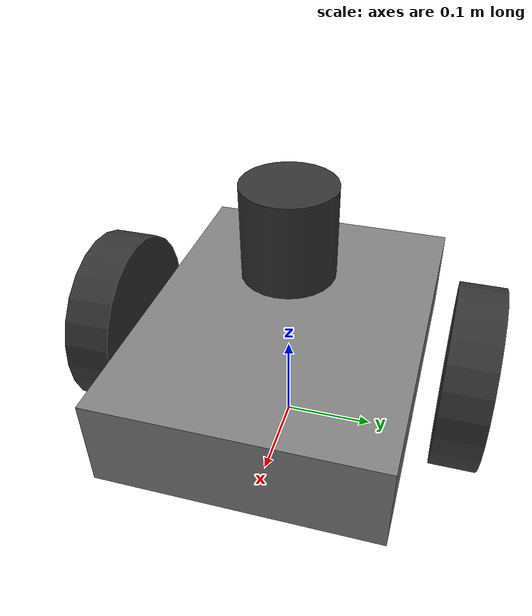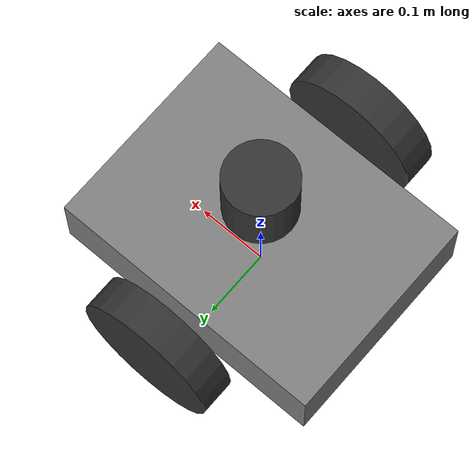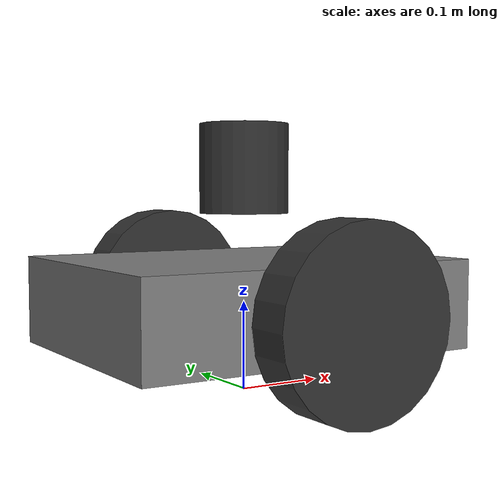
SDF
<?xml version="1.0" ?>
<sdf version="1.9">
  <model name="lidar_robot">
    <static>false</static>
    <pose>0 0 0.1 0 0 0</pose>

    <link name="base_link">
      <inertial>
        <mass>10.0</mass>
        <inertia>
          <ixx>0.167</ixx>
          <ixy>0</ixy>
          <ixz>0</ixz>
          <iyy>0.167</iyy>
          <iyz>0</iyz>
          <izz>0.25</izz>
        </inertia>
      </inertial>

      <collision name="base_collision">
        <geometry>
          <box><size>0.4 0.3 0.1</size></box>
        </geometry>
      </collision>

      <visual name="base_visual">
        <geometry>
          <box><size>0.4 0.3 0.1</size></box>
        </geometry>
        <material>
          <ambient>0.3 0.3 0.3 1</ambient>
          <diffuse>0.5 0.5 0.5 1</diffuse>
        </material>
      </visual>
    </link>

    <link name="lidar_link">
      <pose relative_to="base_link">0 0 0.15 0 0 0</pose>

      <inertial>
        <mass>0.5</mass>
        <inertia>
          <ixx>0.001</ixx>
          <ixy>0</ixy>
          <ixz>0</ixz>
          <iyy>0.001</iyy>
          <iyz>0</iyz>
          <izz>0.001</izz>
        </inertia>
      </inertial>

      <collision name="lidar_collision">
        <geometry>
          <cylinder>
            <radius>0.05</radius>
            <length>0.1</length>
          </cylinder>
        </geometry>
      </collision>

      <visual name="lidar_visual">
        <geometry>
          <cylinder>
            <radius>0.05</radius>
            <length>0.1</length>
          </cylinder>
        </geometry>
        <material>
          <ambient>0.1 0.1 0.1 1</ambient>
          <diffuse>0.2 0.2 0.2 1</diffuse>
        </material>
      </visual>

      <sensor name="gpu_lidar" type="gpu_lidar">
        <!--
          always_on: Sensor runs even when no subscribers
          update_rate: How often sensor generates data (Hz)
          visualize: Show rays in Gazebo GUI (useful for debugging)
        -->
        <always_on>true</always_on>
        <update_rate>10</update_rate>
        <visualize>true</visualize>

        <!--
          Topic name for Gazebo transport
          This gets bridged to ROS 2 via ros_gz_bridge
        -->
        <topic>lidar</topic>

        <lidar>
          <scan>
            <horizontal>
              <samples>640</samples>
              <resolution>1</resolution>
              <min_angle>-3.14159</min_angle>
              <max_angle>3.14159</max_angle>
            </horizontal>

            <vertical>
              <samples>16</samples>
              <resolution>1</resolution>
              <min_angle>-0.2618</min_angle>
              <max_angle>0.2618</max_angle>
            </vertical>
          </scan>

          <range>
            <min>0.1</min>
            <max>30.0</max>
            <resolution>0.01</resolution>
          </range>

          <noise>
            <type>gaussian</type>
            <mean>0.0</mean>
            <stddev>0.03</stddev>  <!-- ±3cm noise typical for LiDAR -->
          </noise>
        </lidar>
      </sensor>
    </link>

    <!-- Fixed joint connecting LiDAR to base -->
    <joint name="lidar_joint" type="fixed">
      <parent>base_link</parent>
      <child>lidar_link</child>
    </joint>

    <!--
      ============================================================
      WHEELS (for differential drive)
      ============================================================
    -->

    <!-- Left Wheel -->
    <link name="left_wheel">
      <pose relative_to="base_link">0 0.2 0 1.5708 0 0</pose>
      <inertial>
        <mass>0.5</mass>
        <inertia>
          <ixx>0.001</ixx>
          <ixy>0</ixy>
          <ixz>0</ixz>
          <iyy>0.001</iyy>
          <iyz>0</iyz>
          <izz>0.002</izz>
        </inertia>
      </inertial>
      <collision name="left_wheel_collision">
        <geometry>
          <cylinder>
            <radius>0.1</radius>
            <length>0.05</length>
          </cylinder>
        </geometry>
        <surface>
          <friction>
            <ode><mu>1.0</mu><mu2>1.0</mu2></ode>
          </friction>
        </surface>
      </collision>
      <visual name="left_wheel_visual">
        <geometry>
          <cylinder>
            <radius>0.1</radius>
            <length>0.05</length>
          </cylinder>
        </geometry>
        <material>
          <ambient>0.1 0.1 0.1 1</ambient>
          <diffuse>0.2 0.2 0.2 1</diffuse>
        </material>
      </visual>
    </link>

    <joint name="left_wheel_joint" type="revolute">
      <parent>base_link</parent>
      <child>left_wheel</child>
      <axis>
        <xyz>0 0 1</xyz>
        <limit><effort>10</effort><velocity>10</velocity></limit>
      </axis>
    </joint>

    <!-- Right Wheel -->
    <link name="right_wheel">
      <pose relative_to="base_link">0 -0.2 0 1.5708 0 0</pose>
      <inertial>
        <mass>0.5</mass>
        <inertia>
          <ixx>0.001</ixx>
          <ixy>0</ixy>
          <ixz>0</ixz>
          <iyy>0.001</iyy>
          <iyz>0</iyz>
          <izz>0.002</izz>
        </inertia>
      </inertial>
      <collision name="right_wheel_collision">
        <geometry>
          <cylinder>
            <radius>0.1</radius>
            <length>0.05</length>
          </cylinder>
        </geometry>
        <surface>
          <friction>
            <ode><mu>1.0</mu><mu2>1.0</mu2></ode>
          </friction>
        </surface>
      </collision>
      <visual name="right_wheel_visual">
        <geometry>
          <cylinder>
            <radius>0.1</radius>
            <length>0.05</length>
          </cylinder>
        </geometry>
        <material>
          <ambient>0.1 0.1 0.1 1</ambient>
          <diffuse>0.2 0.2 0.2 1</diffuse>
        </material>
      </visual>
    </link>

    <joint name="right_wheel_joint" type="revolute">
      <parent>base_link</parent>
      <child>right_wheel</child>
      <axis>
        <xyz>0 0 1</xyz>
        <limit><effort>10</effort><velocity>10</velocity></limit>
      </axis>
    </joint>

    <!--
      ============================================================
      PLUGINS
      ============================================================
    -->

    <!-- Differential Drive Controller -->
    <plugin filename="gz-sim-diff-drive-system"
            name="gz::sim::systems::DiffDrive">
      <left_joint>left_wheel_joint</left_joint>
      <right_joint>right_wheel_joint</right_joint>
      <wheel_separation>0.4</wheel_separation>
      <wheel_radius>0.1</wheel_radius>
      <odom_publish_frequency>10</odom_publish_frequency>
      <topic>cmd_vel</topic>
    </plugin>

    <!-- Joint State Publisher -->
    <plugin filename="gz-sim-joint-state-publisher-system"
            name="gz::sim::systems::JointStatePublisher">
      <joint_name>left_wheel_joint</joint_name>
      <joint_name>right_wheel_joint</joint_name>
    </plugin>

  </model>
</sdf>
